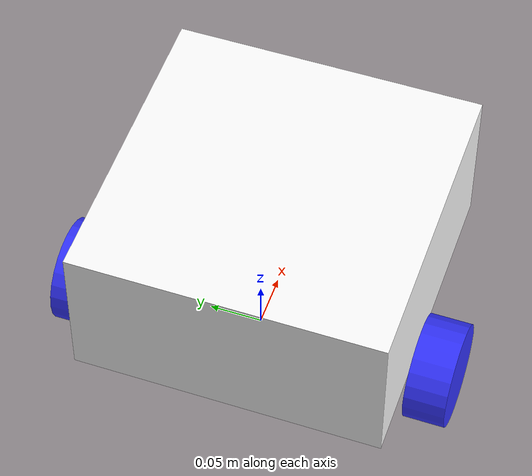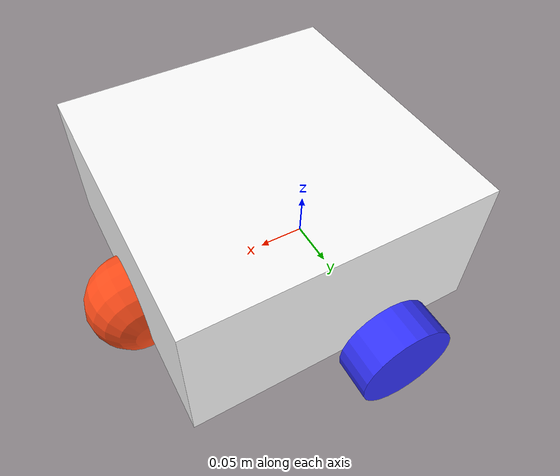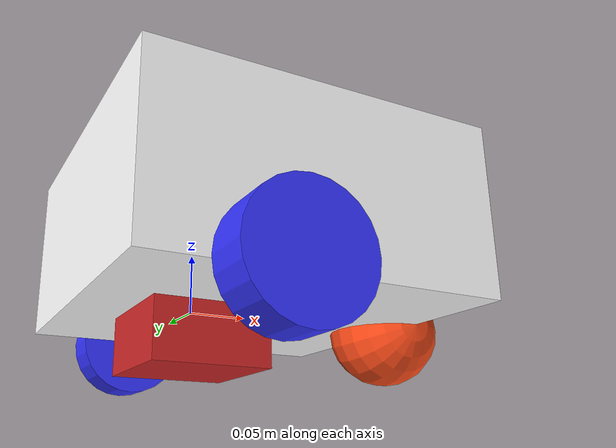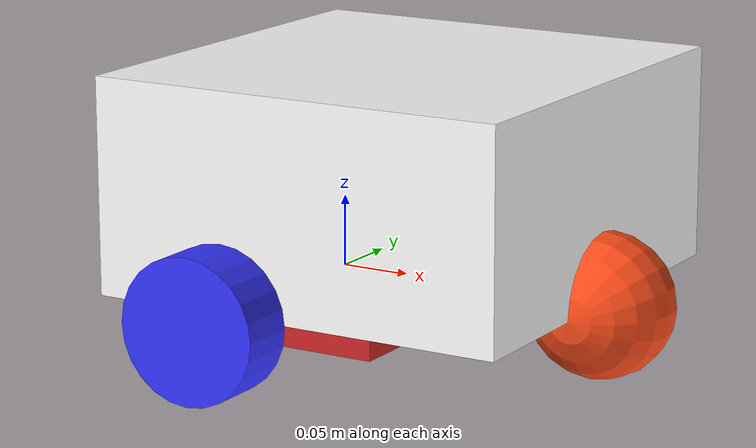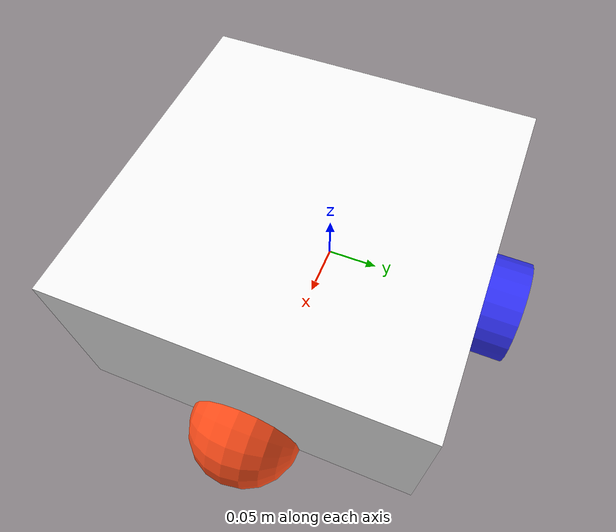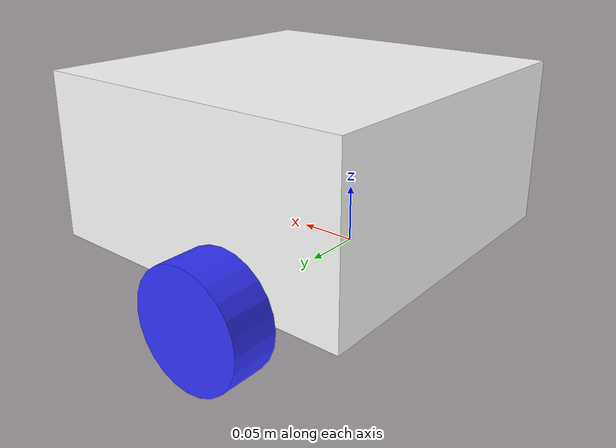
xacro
<?xml version="1.0"?>
<robot xmlns:xacro="http://www.ros.org/wiki/xacro" name = "bob1">

<!-- Materials -->
    <material name = "white">
        <color rgba= "1 1 1 1"/>
    </material>
    <material name = "orange">
        <color rgba= "1 0.3 0.1 1"/>
    </material>
    <material name = "blue">
        <color rgba= "0.2 0.2 1 1"/>
    </material>
    <material name = "black">
        <color rgba= "0 0 0 1"/>
    </material>

<!-- Links -->

<!-- Base Link -->
  <link name="base_link">
    <visual>
      <origin xyz="0 0 0"/>
      <geometry>
        <box size="0.1 0.1 0.1" />
      </geometry>
    </visual>
  </link>
  <gazebo reference="base_link">
    <material>Gazebo/Red</material>
  </gazebo>

<!-- Chassis -->
    <joint name = "chassis_joint" type="fixed">
        <parent link = "base_link"/>
        <child link = "chassis"/>
        <origin xyz= "-0.1 0 0"/>
    	<limit lower="-1.57" upper="1.57" effort="100.0" velocity="0.5"/>
    </joint>

    <link name = "chassis">
        <visual>
            <origin xyz= "0.15 0 0.075" />
            <geometry>
                <box size= "0.3 0.3 0.15" />
            </geometry>
            <material name="white"/>
        </visual>
        <collision>
            <origin xyz= "0.15 0 0.075" />
            <geometry>
                <box size= "0.3 0.3 0.15" />
            </geometry>
        </collision>
        <inertial>
            <mass value="1.0" />
            <inertia ixx="${(1/12) * 1.0 * (0.3 *0.3 +0.15*0.15)}" ixy="0.0" ixz="0.0"
                    iyy="${(1/12) * 1.0 * (0.3 *0.3 +0.15*0.15)}" iyz="0.0"
                    izz="${(1/12) * 1.0 * (0.3 *0.3 +0.3 *0.3 )}" />
            <origin xyz = "0.15 0 0.75" rpy = "0 0 0"/>
        </inertial>
    </link>
  <gazebo reference="chassis">
    <material>Gazebo/White</material>
  </gazebo>

<!-- Left Wheel -->
    <joint name = "left_wheel_joint" type = "continuous" >
        <parent link="base_link"/>
        <child link="left_wheel"/>
        <origin xyz= "0.0 0.175 0.0" rpy="-${pi/2} 0 0" />
        <axis xyz = "0 0 1"/>
    	<limit lower="-1.57" upper="1.57" effort="100.0" velocity="0.5"/>
    </joint>

    <link name="left_wheel">
        <visual>
            <geometry>
                <cylinder radius="0.05" length = "0.04"/>
            </geometry>
            <material name="blue"/>
        </visual>
        <collision>
            <geometry>
                <cylinder radius="0.05" length = "0.04"/>
            </geometry>
        </collision>
        <inertial>
            <mass value="0.1" />
            <inertia ixx="${(1/12) * 0.1 * (3*.05*.05 + 0.04*0.04)}" ixy="0.0" ixz="0.0"
                    iyy="${(1/12) * 0.1 * (3*.05*.05 + 0.04*0.04)}" iyz="0.0"
                    izz="${(1/2) * 0.1 * (.05*.05)}" />
            <origin xyz = "0 0 0" rpy = "0 0 0"/>
        </inertial>
    </link>
  <gazebo reference="left_wheel">
    <material>Gazebo/Blue</material>
  </gazebo>

    <!-- Right Wheel -->
    <joint name = "right_wheel_joint" type = "continuous" >
        <parent link="base_link"/>
        <child link="right_wheel"/>
        <origin xyz= "0.0 -0.175 0.0" rpy="${pi/2} 0 0" />
        <axis xyz = "0 0 -1"/>
    	<limit lower="-1.57" upper="1.57" effort="100.0" velocity="0.5"/>
    </joint>

    <link name="right_wheel">
        <visual>
            <geometry>
                <cylinder radius="0.05" length = "0.04"/>
            </geometry>
            <material name="blue"/>
        </visual>
        <collision>
            <geometry>
                <cylinder radius="0.05" length = "0.04"/>
            </geometry>
        </collision>
        <inertial>
            <mass value="0.1" />
            <inertia ixx="${(1/12) * 0.1 * (3*.05*.05 + 0.04*0.04)}" ixy="0.0" ixz="0.0"
                    iyy="${(1/12) * 0.1 * (3*.05*.05 + 0.04*0.04)}" iyz="0.0"
                    izz="${(1/2) * 0.1 * (.05*.05)}" />
            <origin xyz = "0 0 0" rpy = "0 0 0"/>
        </inertial>
    </link>
  <gazebo reference="right_wheel">
    <material>Gazebo/Blue</material>
  </gazebo>

    <!-- Caster Wheel -->
    <joint name = "caster_wheel_joint" type ="fixed" >
        <parent link = "base_link"/>
        <child link = "caster" />
        <origin xyz = "0.2 0 0" rpy = "-${pi/2} 0 0" />
    </joint>

    <link name = "caster">
        <visual>
            <geometry>
                <sphere radius="0.05"/>
            </geometry>
            <material name = "orange"/>
        </visual>
        <collision>
            <geometry>
                <sphere radius="0.05"/>
            </geometry>
        </collision>
        <inertial>
            <mass value="0.1" />
            <inertia ixx="${(2/5) * 0.1 * (0.05*0.05)}" ixy="0.0" ixz="0.0"
                    iyy="${(2/5) * 0.1 * (0.05*0.05)}" iyz="0.0"
                    izz="${(2/5) * 0.1 * (0.05*0.05)}" />
            <origin xyz = "0 0 0" rpy = "0 0 0"/>
        </inertial>
    </link>
  <gazebo reference="caster">
    <material>Gazebo/Orange</material>
  </gazebo>

</robot>
